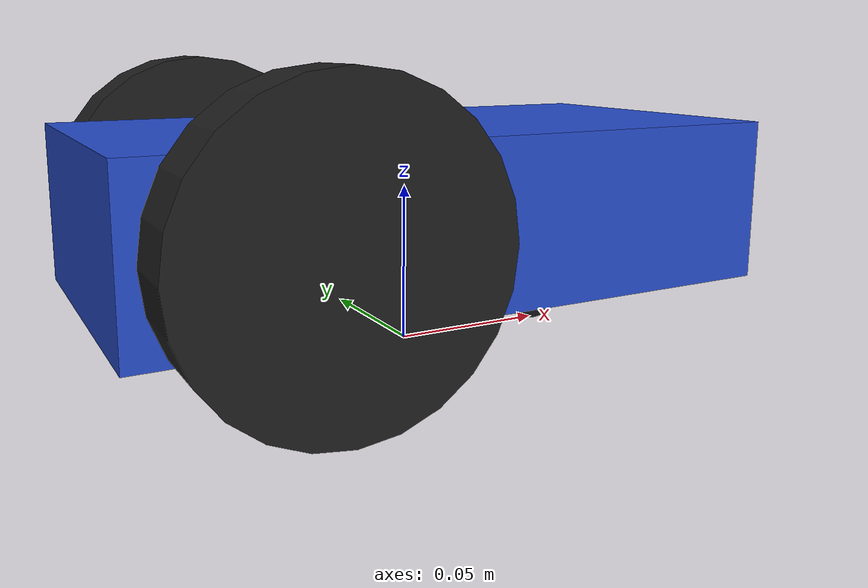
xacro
<?xml version="1.1" encoding="UTF-8"?>

<robot xmlns:xacro="https://www.ros.org/wiki/xacro">
    <link name = "base_footprint"/>

    <link name = "base_link">
        <visual>
            <geometry>
                <box size = "0.2 0.1 0.05"/>
            </geometry>

            <material name="blue" />

            <origin xyz="0.0 0.0 0.0" rpy="0.0 0.0 0.0"/>
        </visual>

        <collision>
            <origin xyz="0.0 0.0 0.0" rpy="0.0 0.0 0.0"/>
            <geometry>
                <box size = "0.2 0.1 0.05"/>
            </geometry>
        </collision>
        <xacro:inertial_box mass = "0.5" length = "0.2" breadth = "0.1" height = "0.05" x = "0.0" y = "0.0" z = "0.0" roll = "0.0" pitch = "0.0" yaw = "0.0" />
    </link>

    <gazebo reference="base_link">
        <material>Gazebo/Blue</material>
        <sensor name="imu_sensor" type="imu">
            <always_on>1</always_on>
            <update_rate>1</update_rate>
            <visualize>true</visualize>
            <topic>imu</topic>
        </sensor>
    </gazebo>

    <joint name="base_joint" type="fixed">
        <parent link="base_footprint"/>
        <child link="base_link"/>
        <origin xyz="0.0 0.0 0.045"/>
    </joint>

    <link name="left_wheel">
        <visual>
            <geometry>
                <cylinder radius="0.045" length="0.02"/>
            </geometry>

            <material name = "black" />

            <origin xyz="0.0 0.0 0.0" rpy="0.0 0.0 0.0"/>
        </visual>

        <collision>
            <origin xyz="0.0 0.0 0.0" rpy="0.0 0.0 0.0"/>
            <geometry>
                <cylinder radius="0.045" length="0.02"/>
            </geometry>
        </collision>

        <xacro:inertial_cylinder mass = "0.1" radius = "0.045" length = "0.02" x = "0.0" y = "0.0" z = "0.0" roll = "0.0" pitch = "0.0" yaw = "0.0" />

    </link>

    <joint name="left_wheel_joint" type="continuous">
        <origin xyz="-0.05 0.06 0.0" rpy="${-pi/2} 0.0 0.0"/>
        <parent link="base_link"/>
        <child link="left_wheel"/>
        <axis xyz="0 0 1"/>
        <limit lower="-3.14159265" upper="3.14159265" effort="1.0" velocity="1.0" />
    </joint>

    <gazebo reference="left_wheel">
        <material>Gazebo/Black</material>
    </gazebo>

    <link name="right_wheel">
        <visual>
            <geometry>
                <cylinder radius="0.045" length="0.02"/>
            </geometry>

            <material name = "black" />

            <origin xyz="0.0 0.0 0.0" rpy="0.0 0.0 0.0"/>
        </visual>

        <collision>
            <origin xyz="0.0 0.0 0.0" rpy="0.0 0.0 0.0"/>
            <geometry>
                <cylinder radius="0.045" length="0.02"/>
            </geometry>
        </collision>

        <xacro:inertial_cylinder mass = "0.1" radius = "0.045" length = "0.02" x = "0.0" y = "0.0" z = "0.0" roll = "0.0" pitch = "0.0" yaw = "0.0" />

    </link>

    <joint name="right_wheel_joint" type="continuous">
        <origin xyz="-0.05 -0.06 0.0" rpy="${-pi/2} 0.0 0.0"/>
        <parent link="base_link"/>
        <child link="right_wheel"/>
        <axis xyz="0 0 1"/>
        <limit lower="-3.14159265" upper="3.14159265" effort="1.0" velocity="1.0" />
    </joint>

    <gazebo reference="right_wheel">
        <material>Gazebo/Black</material>
    </gazebo>

    <link name="caster_wheel">
        <visual>
            <geometry>
                <sphere radius="0.01"/>
            </geometry>

            <material name = "black" />

            <origin xyz="0.0 0.0 0.0" rpy="0.0 0.0 0.0"/>
        </visual>

        <collision>
            <origin xyz="0.0 0.0 0.0" rpy="0.0 0.0 0.0"/>
            <geometry>
                <sphere radius="0.01"/>
            </geometry>
        </collision>
        <xacro:inertial_sphere mass = "0.01" radius = "0.01" x = "0.0" y = "0.0" z = "0.0" roll = "0.0" pitch = "0.0" yaw = "0.0" />

    </link>

    <joint name="caster_joint" type="fixed">
        <parent link="base_link"/>
        <child link="caster_wheel"/>
        <origin xyz="0.05 0.0 -0.035" rpy="0.0 0.0 0.0"/>
    </joint>

    <gazebo reference="caster_wheel">
        <material>Gazebo/Black</material>
        <mu1 value="0.001"/>
        <mu2 value="0.001"/>
    </gazebo>

</robot>
